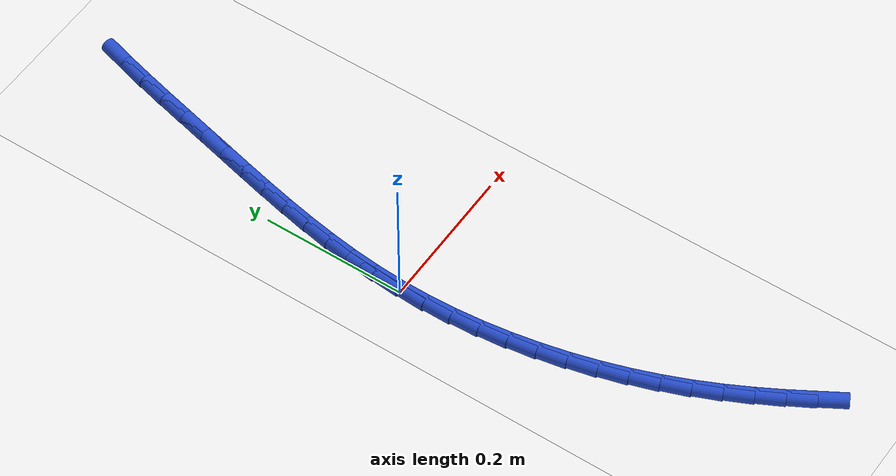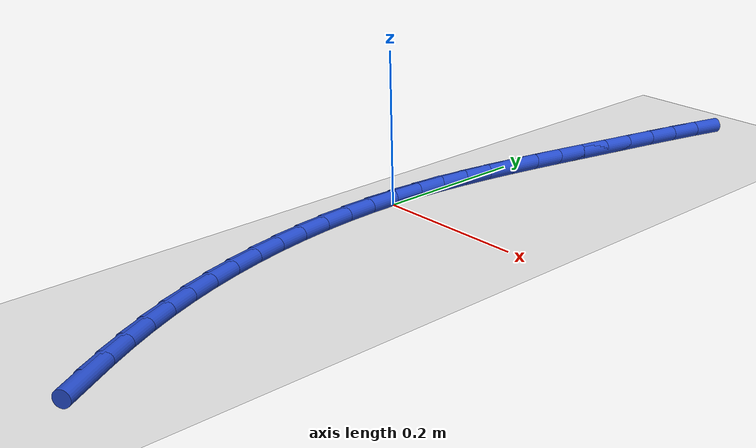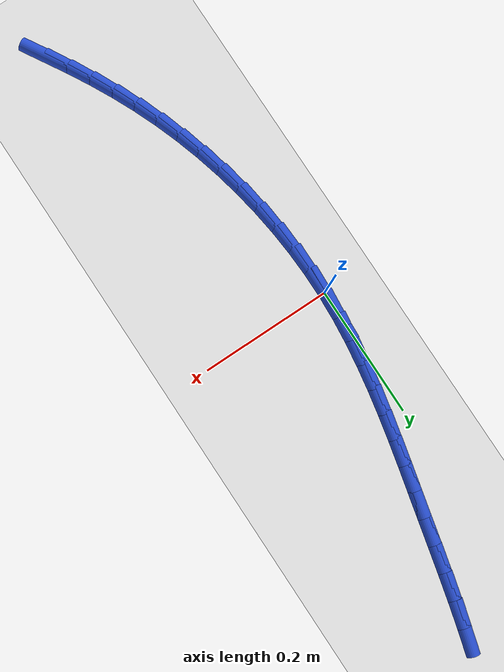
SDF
<sdf version="1.6">
 <world name="default">
  <model name="ground_plane">
   <static>1</static>
   <link name="link">
    <collision name="collision">
     <geometry><plane><normal>0 0 1</normal><size>100 100</size></plane></geometry>
     <surface><friction><ode><mu>100</mu><mu2>50</mu2></ode></friction></surface>
    </collision>
    <visual name="visual">
     <cast_shadows>0</cast_shadows>
     <geometry><plane><normal>0 0 1</normal><size>100 100</size></plane></geometry>
     <material>
      <script><uri>file://media/materials/scripts/gazebo.material</uri><name>Gazebo/WhiteGlow</name></script>
     </material>
    </visual>
   </link>
  </model>
  <model name="line">
   <link name="link_0">
    <pose>-1.734723475976807e-18 2.7755575615628914e-17 0.01 0 1.57 1.517671566461461</pose>
    <collision name="collision">
     <geometry><cylinder><radius>0.01</radius><length>0.08</length></cylinder></geometry>
    </collision>
    <visual name="visual">
     <material>
      <script><name>Gazebo/Blue</name><uri>file://media/materials/scripts/gazebo.material</uri></script>
     </material>
     <geometry><cylinder><radius>0.01</radius><length>0.08</length></cylinder></geometry>
    </visual>
   </link>
   <link name="link_1">
    <pose>0.002012668439115579 0.037850046925808234 0.01 0 1.57 1.473999858505459</pose>
    <collision name="collision">
     <geometry><cylinder><radius>0.01</radius><length>0.08</length></cylinder></geometry>
    </collision>
    <visual name="visual">
     <material>
      <script><name>Gazebo/Blue</name><uri>file://media/materials/scripts/gazebo.material</uri></script>
     </material>
     <geometry><cylinder><radius>0.01</radius><length>0.08</length></cylinder></geometry>
    </visual>
   </link>
   <link name="link_2">
    <pose>0.005663176768669164 0.07544542671056687 0.01 0 1.57 1.4359093881045173</pose>
    <collision name="collision">
     <geometry><cylinder><radius>0.01</radius><length>0.08</length></cylinder></geometry>
    </collision>
    <visual name="visual">
     <material>
      <script><name>Gazebo/Blue</name><uri>file://media/materials/scripts/gazebo.material</uri></script>
     </material>
     <geometry><cylinder><radius>0.01</radius><length>0.08</length></cylinder></geometry>
    </visual>
   </link>
   <link name="link_3">
    <pose>0.01074241363078174 0.11287228789891261 0.01 0 1.57 1.4037001705646406</pose>
    <collision name="collision">
     <geometry><cylinder><radius>0.01</radius><length>0.08</length></cylinder></geometry>
    </collision>
    <visual name="visual">
     <material>
      <script><name>Gazebo/Blue</name><uri>file://media/materials/scripts/gazebo.material</uri></script>
     </material>
     <geometry><cylinder><radius>0.01</radius><length>0.08</length></cylinder></geometry>
    </visual>
   </link>
   <link name="link_4">
    <pose>0.017041267667574342 0.1502167790354822 0.01 0 1.57 1.3775309544224736</pose>
    <collision name="collision">
     <geometry><cylinder><radius>0.01</radius><length>0.08</length></cylinder></geometry>
    </collision>
    <visual name="visual">
     <material>
      <script><name>Gazebo/Blue</name><uri>file://media/materials/scripts/gazebo.material</uri></script>
     </material>
     <geometry><cylinder><radius>0.01</radius><length>0.08</length></cylinder></geometry>
    </visual>
   </link>
   <link name="link_5">
    <pose>0.024350627521167942 0.18756504866491217 0.01 0 1.57 1.3574494974719742</pose>
    <collision name="collision">
     <geometry><cylinder><radius>0.01</radius><length>0.08</length></cylinder></geometry>
    </collision>
    <visual name="visual">
     <material>
      <script><name>Gazebo/Blue</name><uri>file://media/materials/scripts/gazebo.material</uri></script>
     </material>
     <geometry><cylinder><radius>0.01</radius><length>0.08</length></cylinder></geometry>
    </visual>
   </link>
   <link name="link_6">
    <pose>0.032461381833683564 0.22500324533183938 0.01 0 1.57 1.3434215271262457</pose>
    <collision name="collision">
     <geometry><cylinder><radius>0.01</radius><length>0.08</length></cylinder></geometry>
    </collision>
    <visual name="visual">
     <material>
      <script><name>Gazebo/Blue</name><uri>file://media/materials/scripts/gazebo.material</uri></script>
     </material>
     <geometry><cylinder><radius>0.01</radius><length>0.08</length></cylinder></geometry>
    </visual>
   </link>
   <link name="link_7">
    <pose>0.04116441924724221 0.2626175175809003 0.01 0 1.57 1.3353549472956125</pose>
    <collision name="collision">
     <geometry><cylinder><radius>0.01</radius><length>0.08</length></cylinder></geometry>
    </collision>
    <visual name="visual">
     <material>
      <script><name>Gazebo/Blue</name><uri>file://media/materials/scripts/gazebo.material</uri></script>
     </material>
     <geometry><cylinder><radius>0.01</radius><length>0.08</length></cylinder></geometry>
    </visual>
   </link>
   <link name="link_8">
    <pose>0.05025062840396489 0.3004940139567318 0.01 0 1.57 1.333117686528782</pose>
    <collision name="collision">
     <geometry><cylinder><radius>0.01</radius><length>0.08</length></cylinder></geometry>
    </collision>
    <visual name="visual">
     <material>
      <script><name>Gazebo/Blue</name><uri>file://media/materials/scripts/gazebo.material</uri></script>
     </material>
     <geometry><cylinder><radius>0.01</radius><length>0.08</length></cylinder></geometry>
    </visual>
   </link>
   <link name="link_9">
    <pose>0.0595108979459726 0.3387188830039704 0.01 0 1.57 1.3350403573465852</pose>
    <collision name="collision">
     <geometry><cylinder><radius>0.01</radius><length>0.08</length></cylinder></geometry>
    </collision>
    <visual name="visual">
     <material>
      <script><name>Gazebo/Blue</name><uri>file://media/materials/scripts/gazebo.material</uri></script>
     </material>
     <geometry><cylinder><radius>0.01</radius><length>0.08</length></cylinder></geometry>
    </visual>
   </link>
   <link name="link_10">
    <pose>0.06878865346334007 0.37734028732001806 0.01 0 1.57 1.333252057619819</pose>
    <collision name="collision">
     <geometry><cylinder><radius>0.01</radius><length>0.08</length></cylinder></geometry>
    </collision>
    <visual name="visual">
     <material>
      <script><name>Gazebo/Blue</name><uri>file://media/materials/scripts/gazebo.material</uri></script>
     </material>
     <geometry><cylinder><radius>0.01</radius><length>0.08</length></cylinder></geometry>
    </visual>
   </link>
   <link name="link_11">
    <pose>0.0781995118509111 0.4162095862058645 0.01 0 1.57 1.3253046601133345</pose>
    <collision name="collision">
     <geometry><cylinder><radius>0.01</radius><length>0.08</length></cylinder></geometry>
    </collision>
    <visual name="visual">
     <material>
      <script><name>Gazebo/Blue</name><uri>file://media/materials/scripts/gazebo.material</uri></script>
     </material>
     <geometry><cylinder><radius>0.01</radius><length>0.08</length></cylinder></geometry>
    </visual>
   </link>
   <link name="link_12">
    <pose>0.08794697299528703 0.4551145966590776 0.01 0 1.57 1.3111583156858582</pose>
    <collision name="collision">
     <geometry><cylinder><radius>0.01</radius><length>0.08</length></cylinder></geometry>
    </collision>
    <visual name="visual">
     <material>
      <script><name>Gazebo/Blue</name><uri>file://media/materials/scripts/gazebo.material</uri></script>
     </material>
     <geometry><cylinder><radius>0.01</radius><length>0.08</length></cylinder></geometry>
    </visual>
   </link>
   <link name="link_13">
    <pose>0.09823458032457176 0.493843104195282 0.01 0 1.57 1.290639156370649</pose>
    <collision name="collision">
     <geometry><cylinder><radius>0.01</radius><length>0.08</length></cylinder></geometry>
    </collision>
    <visual name="visual">
     <material>
      <script><name>Gazebo/Blue</name><uri>file://media/materials/scripts/gazebo.material</uri></script>
     </material>
     <geometry><cylinder><radius>0.01</radius><length>0.08</length></cylinder></geometry>
    </visual>
   </link>
   <link name="link_166">
    <pose>0.1435903487728865 -0.50746190989266 0.01 0 1.57 -1.0379979010934666</pose>
    <collision name="collision">
     <geometry><cylinder><radius>0.01</radius><length>0.08</length></cylinder></geometry>
    </collision>
    <visual name="visual">
     <material>
      <script><name>Gazebo/Blue</name><uri>file://media/materials/scripts/gazebo.material</uri></script>
     </material>
     <geometry><cylinder><radius>0.01</radius><length>0.08</length></cylinder></geometry>
    </visual>
   </link>
   <link name="link_167">
    <pose>0.12432726213563547 -0.47479502121101486 0.01 0 1.57 -1.068213550978118</pose>
    <collision name="collision">
     <geometry><cylinder><radius>0.01</radius><length>0.08</length></cylinder></geometry>
    </collision>
    <visual name="visual">
     <material>
      <script><name>Gazebo/Blue</name><uri>file://media/materials/scripts/gazebo.material</uri></script>
     </material>
     <geometry><cylinder><radius>0.01</radius><length>0.08</length></cylinder></geometry>
    </visual>
   </link>
   <link name="link_168">
    <pose>0.10616529009707668 -0.4417528777901652 0.01 0 1.57 -1.10244007221823</pose>
    <collision name="collision">
     <geometry><cylinder><radius>0.01</radius><length>0.08</length></cylinder></geometry>
    </collision>
    <visual name="visual">
     <material>
      <script><name>Gazebo/Blue</name><uri>file://media/materials/scripts/gazebo.material</uri></script>
     </material>
     <geometry><cylinder><radius>0.01</radius><length>0.08</length></cylinder></geometry>
    </visual>
   </link>
   <link name="link_169">
    <pose>0.08918885525390967 -0.4081959622883665 0.01 0 1.57 -1.1403979826578445</pose>
    <collision name="collision">
     <geometry><cylinder><radius>0.01</radius><length>0.08</length></cylinder></geometry>
    </collision>
    <visual name="visual">
     <material>
      <script><name>Gazebo/Blue</name><uri>file://media/materials/scripts/gazebo.material</uri></script>
     </material>
     <geometry><cylinder><radius>0.01</radius><length>0.08</length></cylinder></geometry>
    </visual>
   </link>
   <link name="link_170">
    <pose>0.07348238020283358 -0.37398475736387327 0.01 0 1.57 -1.181697775125947</pose>
    <collision name="collision">
     <geometry><cylinder><radius>0.01</radius><length>0.08</length></cylinder></geometry>
    </collision>
    <visual name="visual">
     <material>
      <script><name>Gazebo/Blue</name><uri>file://media/materials/scripts/gazebo.material</uri></script>
     </material>
     <geometry><cylinder><radius>0.01</radius><length>0.08</length></cylinder></geometry>
    </visual>
   </link>
   <link name="link_171">
    <pose>0.05913028345670038 -0.33897977505385085 0.01 0 1.57 -1.2251144065798512</pose>
    <collision name="collision">
     <geometry><cylinder><radius>0.01</radius><length>0.08</length></cylinder></geometry>
    </collision>
    <visual name="visual">
     <material>
      <script><name>Gazebo/Blue</name><uri>file://media/materials/scripts/gazebo.material</uri></script>
     </material>
     <geometry><cylinder><radius>0.01</radius><length>0.08</length></cylinder></geometry>
    </visual>
   </link>
   <link name="link_172">
    <pose>0.04620874079966181 -0.30310082499121216 0.01 0 1.57 -1.2682249845874811</pose>
    <collision name="collision">
     <geometry><cylinder><radius>0.01</radius><length>0.08</length></cylinder></geometry>
    </collision>
    <visual name="visual">
     <material>
      <script><name>Gazebo/Blue</name><uri>file://media/materials/scripts/gazebo.material</uri></script>
     </material>
     <geometry><cylinder><radius>0.01</radius><length>0.08</length></cylinder></geometry>
    </visual>
   </link>
   <link name="link_173">
    <pose>0.03476839862691024 -0.2664513733917182 0.01 0 1.57 -1.3108999509371881</pose>
    <collision name="collision">
     <geometry><cylinder><radius>0.01</radius><length>0.08</length></cylinder></geometry>
    </collision>
    <visual name="visual">
     <material>
      <script><name>Gazebo/Blue</name><uri>file://media/materials/scripts/gazebo.material</uri></script>
     </material>
     <geometry><cylinder><radius>0.01</radius><length>0.08</length></cylinder></geometry>
    </visual>
   </link>
   <link name="link_174">
    <pose>0.0248549757839494 -0.2291703349081868 0.01 0 1.57 -1.353474264169393</pose>
    <collision name="collision">
     <geometry><cylinder><radius>0.01</radius><length>0.08</length></cylinder></geometry>
    </collision>
    <visual name="visual">
     <material>
      <script><name>Gazebo/Blue</name><uri>file://media/materials/scripts/gazebo.material</uri></script>
     </material>
     <geometry><cylinder><radius>0.01</radius><length>0.08</length></cylinder></geometry>
    </visual>
   </link>
   <link name="link_175">
    <pose>0.016514191116283074 -0.19139662419343564 0.01 0 1.57 -1.3962754515933453</pose>
    <collision name="collision">
     <geometry><cylinder><radius>0.01</radius><length>0.08</length></cylinder></geometry>
    </collision>
    <visual name="visual">
     <material>
      <script><name>Gazebo/Blue</name><uri>file://media/materials/scripts/gazebo.material</uri></script>
     </material>
     <geometry><cylinder><radius>0.01</radius><length>0.08</length></cylinder></geometry>
    </visual>
   </link>
   <link name="link_176">
    <pose>0.009791763469414854 -0.15326915590028145 0.01 0 1.57 -1.4396276963622565</pose>
    <collision name="collision">
     <geometry><cylinder><radius>0.01</radius><length>0.08</length></cylinder></geometry>
    </collision>
    <visual name="visual">
     <material>
      <script><name>Gazebo/Blue</name><uri>file://media/materials/scripts/gazebo.material</uri></script>
     </material>
     <geometry><cylinder><radius>0.01</radius><length>0.08</length></cylinder></geometry>
    </visual>
   </link>
   <link name="link_177">
    <pose>0.004733411688848785 -0.1149268446815436 0.01 0 1.57 -1.4838554381591933</pose>
    <collision name="collision">
     <geometry><cylinder><radius>0.01</radius><length>0.08</length></cylinder></geometry>
    </collision>
    <visual name="visual">
     <material>
      <script><name>Gazebo/Blue</name><uri>file://media/materials/scripts/gazebo.material</uri></script>
     </material>
     <geometry><cylinder><radius>0.01</radius><length>0.08</length></cylinder></geometry>
    </visual>
   </link>
   <link name="link_178">
    <pose>0.0013848546200884524 -0.07650860519003895 0.01 0 1.57 -1.529286278118363</pose>
    <collision name="collision">
     <geometry><cylinder><radius>0.01</radius><length>0.08</length></cylinder></geometry>
    </collision>
    <visual name="visual">
     <material>
      <script><name>Gazebo/Blue</name><uri>file://media/materials/scripts/gazebo.material</uri></script>
     </material>
     <geometry><cylinder><radius>0.01</radius><length>0.08</length></cylinder></geometry>
    </visual>
   </link>
   <link name="link_179">
    <pose>-0.000208188891362396 -0.038153352078585154 0.01 0 1.57 1.5653397466048895</pose>
    <collision name="collision">
     <geometry><cylinder><radius>0.01</radius><length>0.08</length></cylinder></geometry>
    </collision>
    <visual name="visual">
     <material>
      <script><name>Gazebo/Blue</name><uri>file://media/materials/scripts/gazebo.material</uri></script>
     </material>
     <geometry><cylinder><radius>0.01</radius><length>0.08</length></cylinder></geometry>
    </visual>
   </link>
   <link name="link_180">
    <pose>-1.5612511283791264e-17 5.551115123125783e-17 0.01 0 1.57 1.5164989883170885</pose>
    <collision name="collision">
     <geometry><cylinder><radius>0.01</radius><length>0.08</length></cylinder></geometry>
    </collision>
    <visual name="visual">
     <material>
      <script><name>Gazebo/Blue</name><uri>file://media/materials/scripts/gazebo.material</uri></script>
     </material>
     <geometry><cylinder><radius>0.01</radius><length>0.08</length></cylinder></geometry>
    </visual>
   </link>
   <link name="link_181">
    <pose>0.0020551401396793484 0.037812536392899075 0.01 0 1.57 1.516498988317089</pose>
    <collision name="collision">
     <geometry><cylinder><radius>0.01</radius><length>0.08</length></cylinder></geometry>
    </collision>
    <visual name="visual">
     <material>
      <script><name>Gazebo/Blue</name><uri>file://media/materials/scripts/gazebo.material</uri></script>
     </material>
     <geometry><cylinder><radius>0.01</radius><length>0.08</length></cylinder></geometry>
    </visual>
   </link>
  </model>
 </world>
</sdf>
